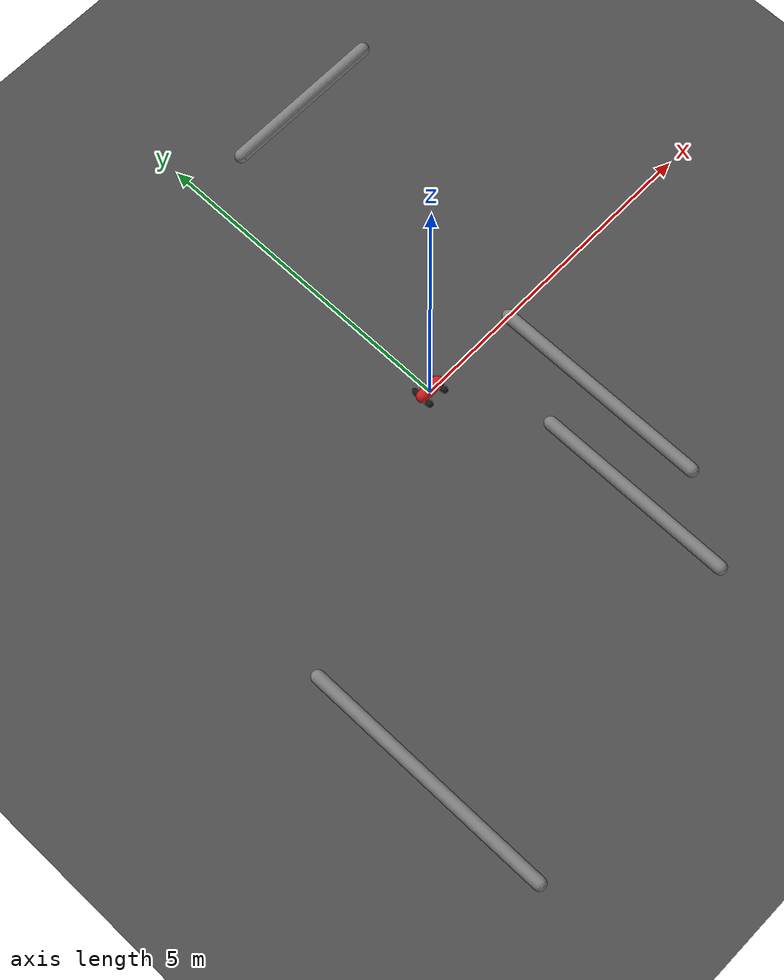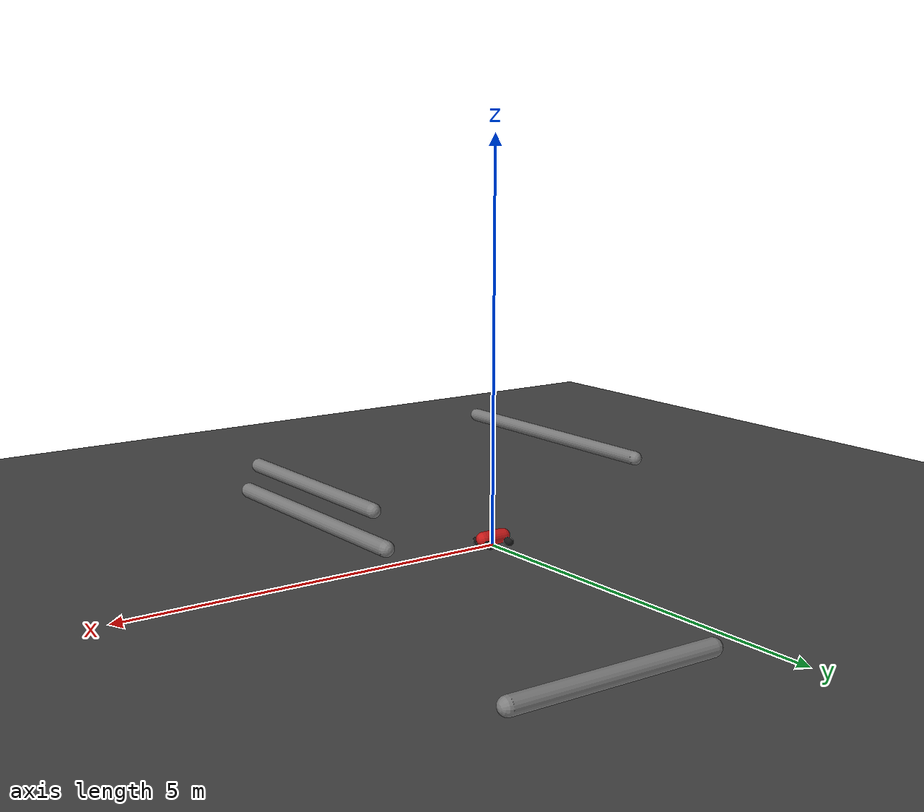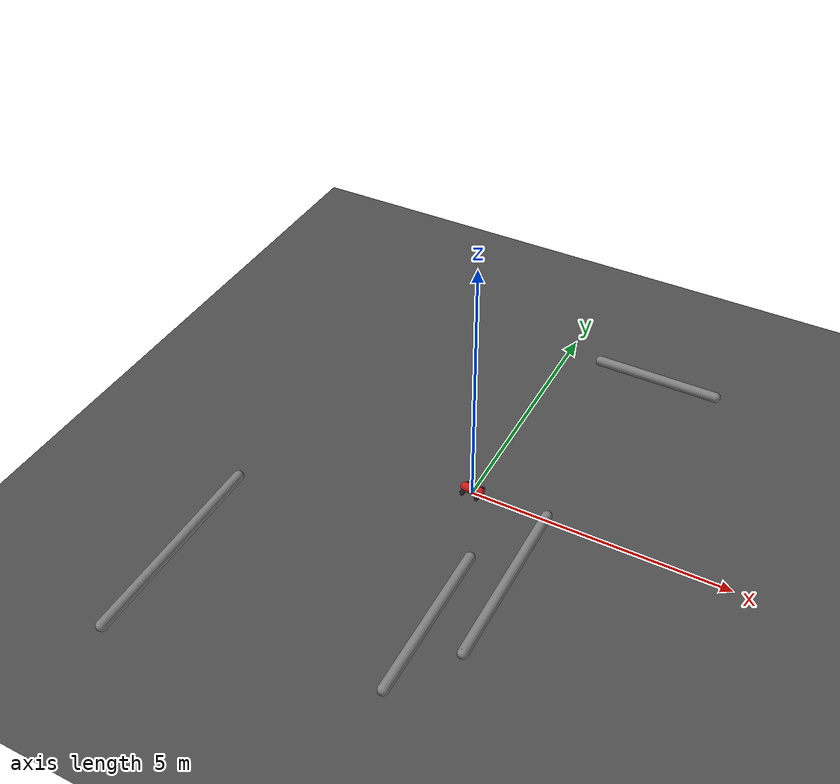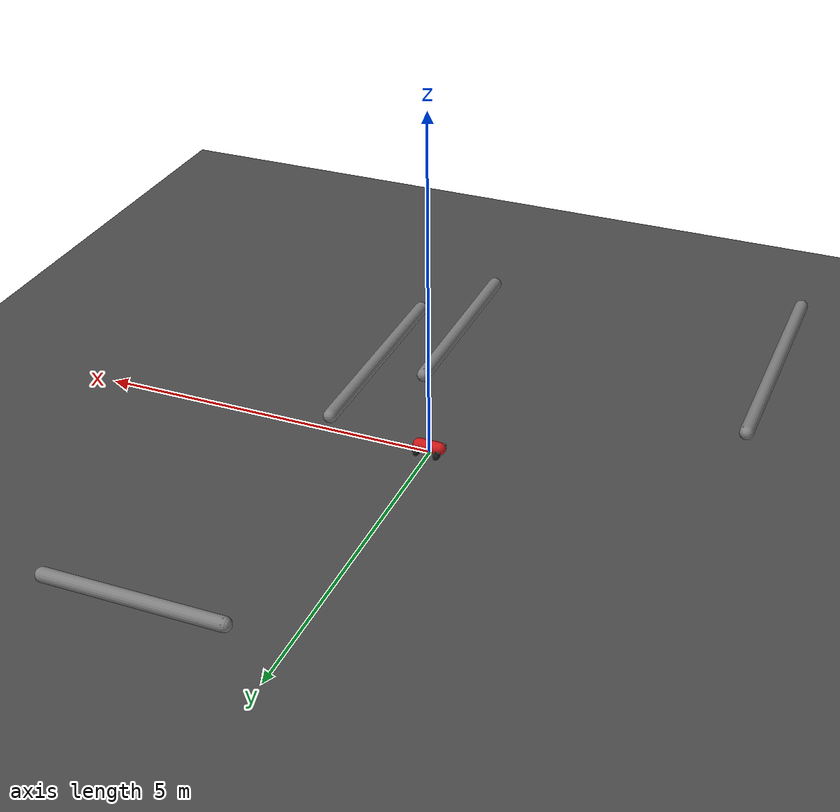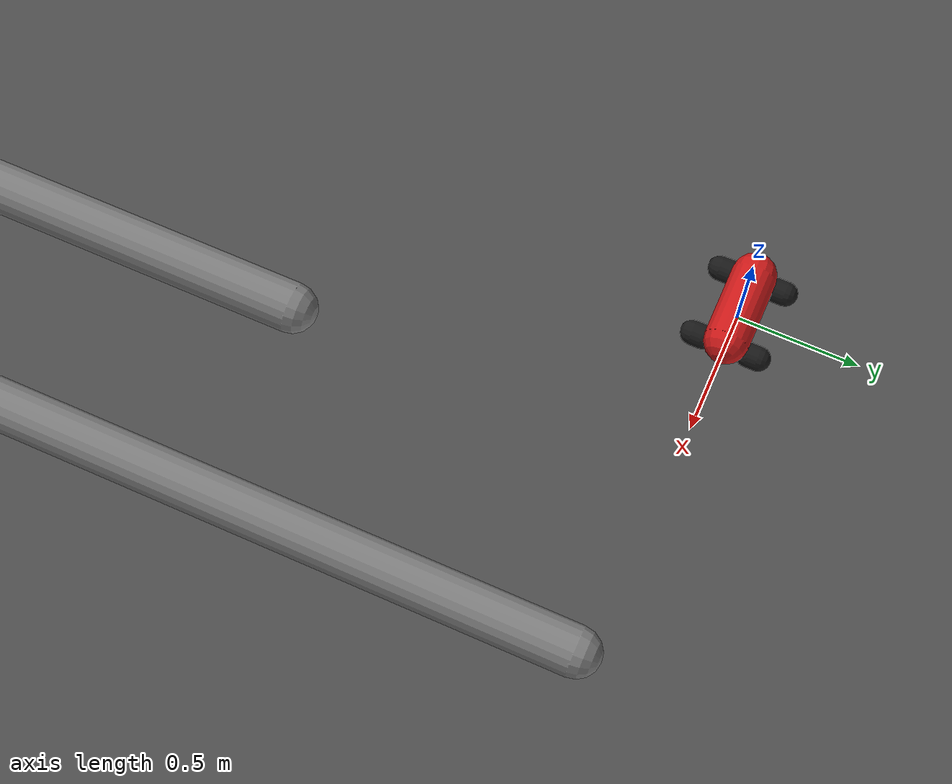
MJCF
<mujoco model="ackermann_car_scene">
  <compiler angle="radian"/>
  <option timestep="0.002" gravity="0 0 -9.81" iterations="4" cone="pyramidal"/>

  <default>
    <joint damping="0.05"/>
    <geom friction="2.0 0.1 0.1" contype="1" conaffinity="1"/>
  </default>

  <worldbody>
    <geom name="floor" type="plane" size="8.0 8.0 0.1" rgba="0.3 0.3 0.3 1"/>
    <geom name="wall_0" type="capsule" size="0.1" fromto="-3.9910376904587217 -5.670936402393892 0.2 -3.9910376904587217 -1.8013676847455187 0.2" rgba="0.5 0.5 0.5 1"/>
    <geom name="wall_1" type="capsule" size="0.1" fromto="1.5275736129619881 -3.396734368033356 0.2 1.5275736129619881 -0.0568093953620481 0.2" rgba="0.5 0.5 0.5 1"/>
    <geom name="wall_2" type="capsule" size="0.1" fromto="0.7308361540080277 -4.5830563347577975 0.2 0.7308361540080277 -1.5660520006557026 0.2" rgba="0.5 0.5 0.5 1"/>
    <geom name="wall_3" type="capsule" size="0.1" fromto="0.7651939558804779 4.453376066547685 0.2 3.2490235063939066 4.453376066547685 0.2" rgba="0.5 0.5 0.5 1"/>

    <body name="chassis" pos="0 0 0.1">
      <freejoint name="chassis_free"/>
      <geom name="chassis_geom" type="capsule" size="0.09" fromto="-0.15 0 0 0.15 0 0" mass="3.0" rgba="0.8 0.1 0.1 1"/>

      <body name="wheel_fl" pos="0.1483 0.115 -0.05">
        <joint name="steer_fl" type="hinge" axis="0 0 1" range="-0.6 0.6" limited="true" damping="1.0"/>
        <geom name="knuckle_fl_geom" type="sphere" size="0.01" mass="0.05" rgba="0.2 0.2 0.2 1"/>
        <body name="wheel_fl_spin">
          <joint name="spin_fl" type="hinge" axis="0 1 0" damping="0.001"/>
          <geom name="wheel_fl_geom" type="capsule" size="0.05" fromto="0 -0.0215 0 0 0.0215 0" mass="0.1" rgba="0.1 0.1 0.1 1"/>
        </body>
      </body>
      <body name="wheel_fr" pos="0.1483 -0.115 -0.05">
        <joint name="steer_fr" type="hinge" axis="0 0 1" range="-0.6 0.6" limited="true" damping="1.0"/>
        <geom name="knuckle_fr_geom" type="sphere" size="0.01" mass="0.05" rgba="0.2 0.2 0.2 1"/>
        <body name="wheel_fr_spin">
          <joint name="spin_fr" type="hinge" axis="0 1 0" damping="0.001"/>
          <geom name="wheel_fr_geom" type="capsule" size="0.05" fromto="0 -0.0215 0 0 0.0215 0" mass="0.1" rgba="0.1 0.1 0.1 1"/>
        </body>
      </body>
      <body name="wheel_rl" pos="-0.1483 0.115 -0.05">
        <joint name="spin_rl" type="hinge" axis="0 1 0" damping="0.001"/>
        <geom name="wheel_rl_geom" type="capsule" size="0.05" fromto="0 -0.0215 0 0 0.0215 0" mass="0.1" rgba="0.1 0.1 0.1 1"/>
      </body>
      <body name="wheel_rr" pos="-0.1483 -0.115 -0.05">
        <joint name="spin_rr" type="hinge" axis="0 1 0" damping="0.001"/>
        <geom name="wheel_rr_geom" type="capsule" size="0.05" fromto="0 -0.0215 0 0 0.0215 0" mass="0.1" rgba="0.1 0.1 0.1 1"/>
      </body>
    </body>
  </worldbody>

  <equality>
    <joint joint1="steer_fl" joint2="steer_fr"/>
  </equality>

  <actuator>
    <position name="steer" joint="steer_fl" kp="80" ctrlrange="-0.6 0.6" forcerange="-20 20"/>
    <motor name="throttle_rl" joint="spin_rl" gear="0.78" ctrlrange="-1 1"/>
    <motor name="throttle_rr" joint="spin_rr" gear="0.78" ctrlrange="-1 1"/>
  </actuator>
</mujoco>
